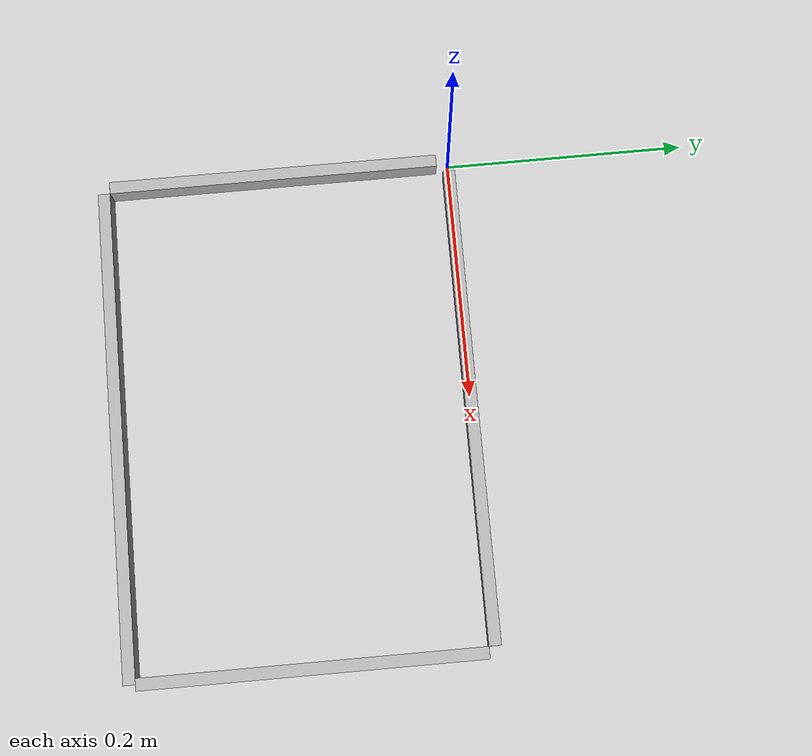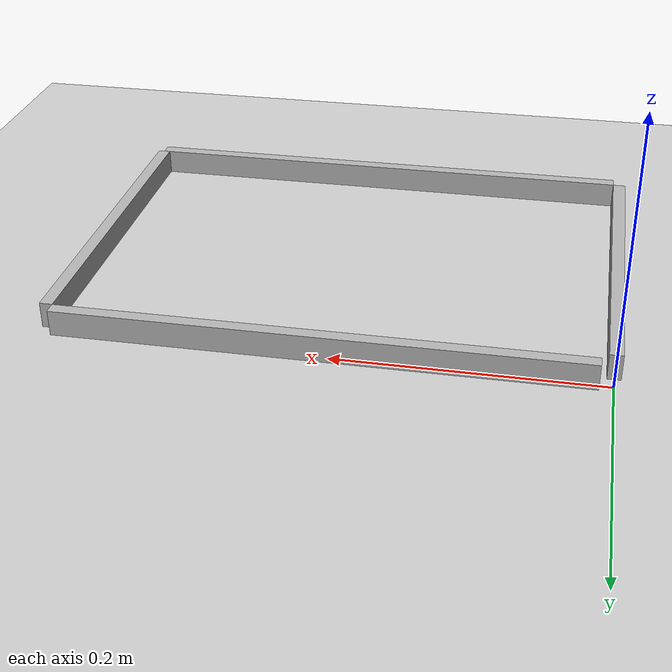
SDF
<?xml version="1.0" ?>
<sdf version="1.6">
  <world name="toio_a3_map">
    <physics name="1ms" type="ignored">
      <max_step_size>0.001</max_step_size>
      <real_time_factor>1.0</real_time_factor>
    </physics>
    <plugin
      filename="gz-sim-physics-system"
      name="gz::sim::systems::Physics">
    </plugin>
    <plugin
      filename="gz-sim-user-commands-system"
      name="gz::sim::systems::UserCommands">
    </plugin>
    <plugin
      filename="gz-sim-scene-broadcaster-system"
      name="gz::sim::systems::SceneBroadcaster">
    </plugin>
    <plugin
      filename="gz-sim-contact-system"
      name="gz::sim::systems::Contact">
    </plugin>
    <plugin
      filename="gz-sim-sensors-system"
      name="gz::sim::systems::Sensors">
      <render_engine>ogre2</render_engine>
    </plugin>

    <plugin
      filename="gz-sim-imu-system"
      name="gz::sim::systems::Imu">
    </plugin>
    <!-- https://docs.lxrobotics.com/knowledge-base/gazebo/set-initial-camera-pose-gazebo -->
    <gui fullscreen="0">
      <plugin filename="MinimalScene" name="3D View">
        <gz-gui>
          <title>3D View</title>
          <property type="bool" key="showTitleBar">false</property>
          <property type="string" key="state">docked</property>
        </gz-gui>

        <engine>ogre2</engine>
        <scene>scene</scene>
        <ambient_light>1.0 1.0 1.0</ambient_light>
        <background_color>0.4 0.6 1.0</background_color>
        <camera_pose>0.208 -0.16 0.23 0 1.57 1.57</camera_pose>
      </plugin>
      <plugin filename="GzSceneManager" name="Scene Manager">
        <gz-gui>
          <property key="resizable" type="bool">false</property>
          <property key="width" type="double">5</property>
          <property key="height" type="double">5</property>
          <property key="state" type="string">floating</property>
          <property key="showTitleBar" type="bool">false</property>
        </gz-gui>
      </plugin>
      <plugin filename="InteractiveViewControl" name="Interactive view control">
        <gz-gui>
          <property key="resizable" type="bool">false</property>
          <property key="width" type="double">5</property>
          <property key="height" type="double">5</property>
          <property key="state" type="string">floating</property>
          <property key="showTitleBar" type="bool">false</property>
        </gz-gui>
      </plugin>
    </gui>

    <light name="sun" type="directional">
      <pose>0 0 10 0 0 0</pose>
      <diffuse>0.8 0.8 0.8 1</diffuse>
      <direction>-0.5 0.1 -0.9</direction>
    </light>
    <model name="ground_plane">
      <static>true</static>
      <link name="link">
        <collision name="collision">
          <geometry>
            <plane>
              <normal>0 0 1</normal>
              <size>100 100</size>
            </plane>
          </geometry>
        </collision>
        <visual name="visual">
          <geometry>
            <plane>
              <normal>0 0 1</normal>
              <size>100 100</size>
            </plane>
          </geometry>
          <material>
            <ambient>0.8 0.8 0.8 1</ambient>
            <diffuse>0.8 0.8 0.8 1</diffuse>
            <specular>0.8 0.8 0.8 1</specular>
          </material>
        </visual>
      </link>
    </model>
    <model name="wall_0">
      <static>true</static>
      <pose>0.20750000000000002 0.0 0.01 0 0 0.0</pose>
      <link name="link">
        <collision name="collision">
          <geometry>
            <box>
              <size>0.395 0.01 0.02</size>
            </box>
          </geometry>
        </collision>
        <visual name="visual">
          <geometry>
            <box>
              <size>0.395 0.01 0.02</size>
            </box>
          </geometry>
          <material>
            <ambient>0.5 0.5 0.5 1</ambient>
            <diffuse>0.7 0.7 0.7 1</diffuse>
          </material>
        </visual>
      </link>
    </model>
    <model name="wall_1">
      <static>true</static>
      <pose>0.20750000000000002 -0.29 0.01 0 0 0.0</pose>
      <link name="link">
        <collision name="collision">
          <geometry>
            <box>
              <size>0.405 0.01 0.02</size>
            </box>
          </geometry>
        </collision>
        <visual name="visual">
          <geometry>
            <box>
              <size>0.405 0.01 0.02</size>
            </box>
          </geometry>
          <material>
            <ambient>0.5 0.5 0.5 1</ambient>
            <diffuse>0.7 0.7 0.7 1</diffuse>
          </material>
        </visual>
      </link>
    </model>
    <model name="wall_2">
      <static>true</static>
      <pose>0.0 -0.1475 0.01 0 0 1.5707963267948966</pose>
      <link name="link">
        <collision name="collision">
          <geometry>
            <box>
              <size>0.27499999999999997 0.01 0.02</size>
            </box>
          </geometry>
        </collision>
        <visual name="visual">
          <geometry>
            <box>
              <size>0.27499999999999997 0.01 0.02</size>
            </box>
          </geometry>
          <material>
            <ambient>0.5 0.5 0.5 1</ambient>
            <diffuse>0.7 0.7 0.7 1</diffuse>
          </material>
        </visual>
      </link>
    </model>
    <model name="wall_3">
      <static>true</static>
      <pose>0.41000000000000003 -0.145 0.01 0 0 1.5707963267948966</pose>
      <link name="link">
        <collision name="collision">
          <geometry>
            <box>
              <size>0.27999999999999997 0.01 0.02</size>
            </box>
          </geometry>
        </collision>
        <visual name="visual">
          <geometry>
            <box>
              <size>0.27999999999999997 0.01 0.02</size>
            </box>
          </geometry>
          <material>
            <ambient>0.5 0.5 0.5 1</ambient>
            <diffuse>0.7 0.7 0.7 1</diffuse>
          </material>
        </visual>
      </link>
    </model>
  </world>
</sdf>
